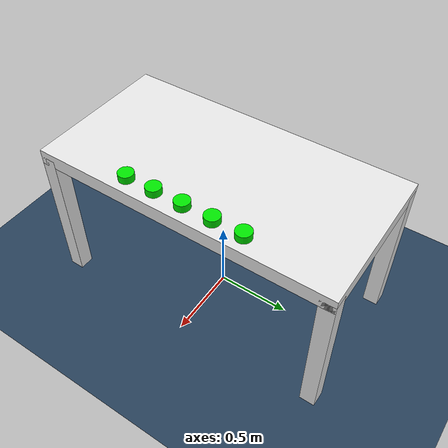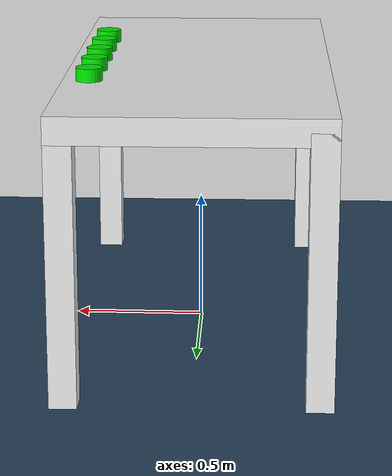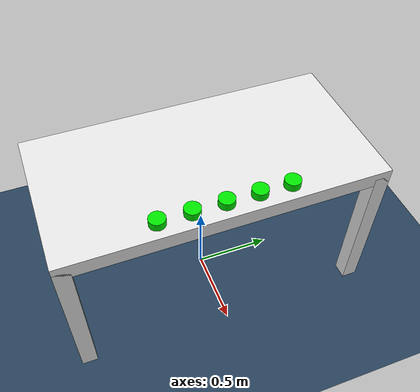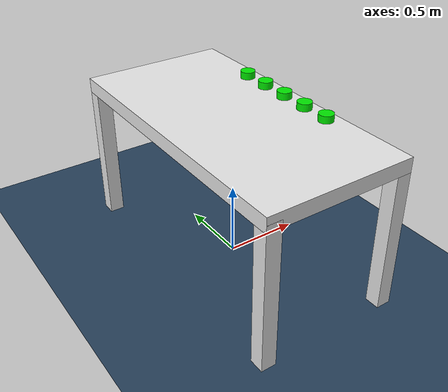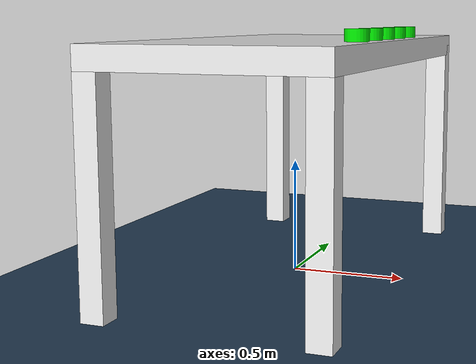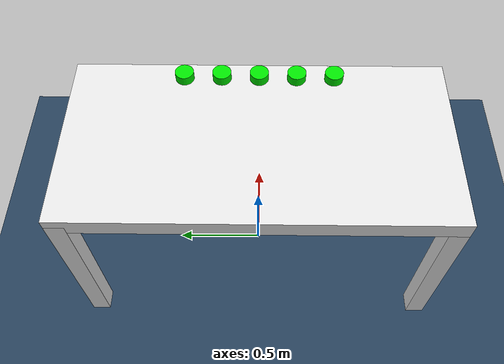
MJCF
<mujoco>

    <asset>
        <texture name="grid" type="2d" builtin="checker" width="512" height="512" rgb1=".1 .2 .3" rgb2=".2 .3 .4" />
        <material name="grid" texture="grid" texrepeat="1 1" texuniform="true" reflectance=".2" />
    </asset>

    <worldbody>
        <geom name="floor" size="0 0 .05" type="plane" material="grid" condim="4" friction="2 0.05 0.01" />
        <light diffuse=".5 .5 .5" pos="0 -1 5" dir="0 0 -1" />
        <light diffuse=".5 .5 .5" pos="0 1 5" dir="0 0 -1" />
    </worldbody>

    <worldbody>
        <body name="table" pos="0 0 1" quat="0.707 0.0 0.0 0.707">
            <geom type="box" size="1 .5 .05" rgba="0.9 0.9 .9 1" mass="6" condim="4" friction="2 0.05 0.01" />
            <geom type="box" pos=".95 .45 -.5" size=".05 .05 .5" rgba="0.9 0.9 .9 1" mass="1" />
            <geom type="box" pos="-.95 .45 -.5" size=".05 .05 .5" rgba="0.9 0.9 .9 1" mass="1" />
            <geom type="box" pos=".95 -.45 -.5" size=".05 .05 .5" rgba="0.9 0.9 .9 1" mass="1" />
            <geom type="box" pos="-.95 -.45 -.5" size=".05 .05 .5" rgba="0.9 0.9 .9 1" mass="1" />

            <body name="demo_button" pos="-0.4 -0.4 0.075" gravcomp="1">
                <joint name="demo_button_joint" type="slide" pos="0 0 0" axis="0 0 1" range="-0.05 0" stiffness="100" damping="10"/>
                <inertial pos="0 0 0" mass="0.1" diaginertia="0.0001 0.0001 0.0001" />
                <geom type="cylinder" size="0.05 0.025" rgba="0.0 0.9 0.0 1" />
            </body>

            <body name="gripper_button" pos="-0.2 -0.4 0.075" gravcomp="1">
                <joint name="gripper_button_joint" type="slide" pos="0 0 0" axis="0 0 1" range="-0.05 0" stiffness="100" damping="10"/>
                <inertial pos="0 0 0" mass="0.1" diaginertia="0.0001 0.0001 0.0001" />
                <geom type="cylinder" size="0.05 0.025" rgba="0.0 0.9 0.0 1" />
            </body>

            <body name="reset_button" pos="0.0 -0.4 0.075" gravcomp="1">
                <joint name="reset_button_joint" type="slide" pos="0 0 0" axis="0 0 1" range="-0.05 0" stiffness="100" damping="10"/>
                <inertial pos="0 0 0" mass="0.1" diaginertia="0.0001 0.0001 0.0001" />
                <geom type="cylinder" size="0.05 0.025" rgba="0.0 0.9 0.0 1" />
            </body>

            <body name="record_button" pos="0.2 -0.4 0.075" gravcomp="1">
                <joint name="record_button_joint" type="slide" pos="0 0 0" axis="0 0 1" range="-0.05 0" stiffness="100" damping="10"/>
                <inertial pos="0 0 0" mass="0.1" diaginertia="0.0001 0.0001 0.0001" />
                <geom type="cylinder" size="0.05 0.025" rgba="0.0 0.9 0.0 1" />
            </body>

            <body name="load_button" pos="0.4 -0.4 0.075" gravcomp="1">
                <joint name="load_button_joint" type="slide" pos="0 0 0" axis="0 0 1" range="-0.05 0" stiffness="100" damping="10"/>
                <inertial pos="0 0 0" mass="0.1" diaginertia="0.0001 0.0001 0.0001" />
                <geom type="cylinder" size="0.05 0.025" rgba="0.0 0.9 0.0 1" />
            </body>
        </body>
    </worldbody>

    <contact>
        <exclude body1="table" body2="demo_button" />
        <exclude body1="table" body2="reset_button" />
        <exclude body1="table" body2="gripper_button" />
        <exclude body1="table" body2="record_button" />
        <exclude body1="table" body2="load_button" />
    </contact>
</mujoco>
